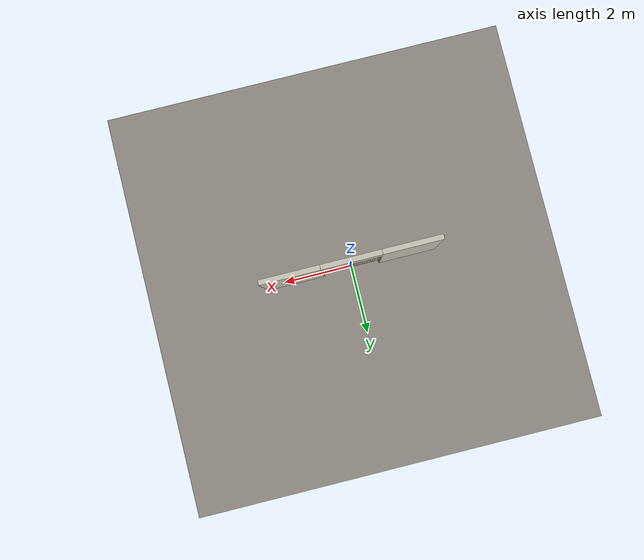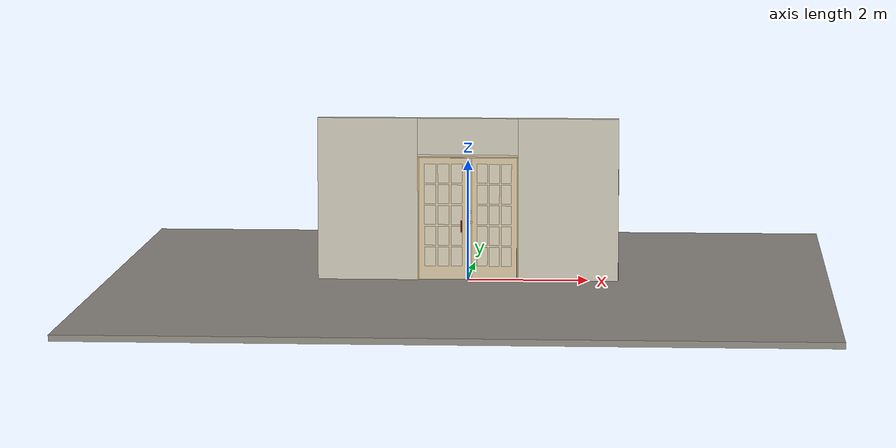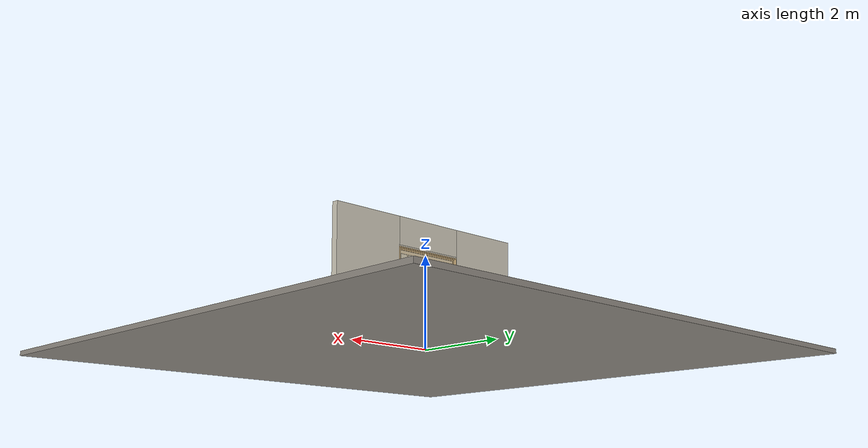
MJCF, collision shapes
<?xml version="1.0" ?>
<mujoco model="db0929_swing_double_minimal">
  <compiler angle="radian" meshdir="../../hardware" texturedir="../../textures" autolimits="true" inertiafromgeom="false"/>
  <option timestep="0.002" integrator="implicitfast" cone="elliptic" impratio="10" noslip_iterations="3">
    <flag multiccd="enable"/>
  </option>
  <size memory="16M"/>
  <default>
    <geom condim="4" solref="0.005 1" solimp="0.95 0.99 0.001"/>
    <joint solreflimit="0.005 1" solimplimit="0.95 0.99 0.001"/>
    <tendon solreflimit="0.005 1"/>
    <equality solref="0.002 1"/>
  </default>
  <visual>
    <headlight ambient="0.4 0.4 0.4" diffuse="0.7 0.7 0.7" specular="0.2 0.2 0.2"/>
    <quality shadowsize="4096"/>
    <map znear="0.01" zfar="60"/>
  </visual>
  <asset>
    <mesh name="handleset_beb5526ad2" file="handleset_beb5526ad2.obj"/>
    <mesh name="knob_d1888f6f03" file="knob_d1888f6f03.obj"/>
    <material name="mat_floor" rgba="0.55 0.53 0.5 1" specular="0.2" shininess="0.15" reflectance="0"/>
    <material name="mat_wall" rgba="0.78 0.76 0.7 1" specular="0.2" shininess="0.1" reflectance="0"/>
    <material name="mat_leaf_a" rgba="0.82 0.75 0.62 1" specular="0.2" shininess="0.51" reflectance="0"/>
    <material name="mat_glass" rgba="0.85 0.92 0.95 0.25" specular="0.2" shininess="0.95" reflectance="0.1"/>
    <material name="mat_hinge" rgba="0.65 0.66 0.68 1" specular="0.74" shininess="0.5" reflectance="0.36"/>
    <material name="mat_op_bronze" rgba="0.3 0.22 0.15 1" specular="0.74" shininess="0.5" reflectance="0.36"/>
    <material name="mat_op_brass" rgba="0.85 0.66 0.3 1" specular="0.8" shininess="0.75" reflectance="0.4"/>
    <material name="mat_trim" rgba="0.85 0.66 0.3 1" specular="0.8" shininess="0.75" reflectance="0.4"/>
    <material name="mat_bolt" rgba="0.85 0.66 0.3 1" specular="0.8" shininess="0.75" reflectance="0.4"/>
    <material name="mat_deadbolt" rgba="0.85 0.66 0.3 1" specular="0.8" shininess="0.75" reflectance="0.4"/>
    <material name="mat_stop" rgba="0.9 0.9 0.92 1" specular="0.8" shininess="0.9" reflectance="0.4"/>
    <material name="mat_leaf_b" rgba="0.82 0.75 0.62 1" specular="0.2" shininess="0.51" reflectance="0"/>
    <material name="mat_frame" rgba="0.82 0.7 0.5 1" specular="0.2" shininess="0.45" reflectance="0"/>
    <texture name="skybox" type="skybox" builtin="gradient" rgb1="0.6 0.7 0.85" rgb2="0.9 0.92 0.95" width="256" height="256"/>
  </asset>
  <worldbody>
    <light name="sun" pos="1.5 -2.5 4" dir="-0.3 0.5 -0.8" directional="true" diffuse="0.8 0.8 0.8" specular="0.3 0.3 0.3" castshadow="true"/>
    <light name="fill" pos="-1.5 2.5 3" dir="0.3 -0.5 -0.7" directional="true" diffuse="0.35 0.35 0.4" castshadow="false"/>
    <camera name="robot_view" pos="0 -2.511687 1.734312" xyaxes="1 0 0 0 0.26963 0.962964" fovy="52"/>
    <camera name="far_view" pos="0 2.572687 1.734312" xyaxes="-1 0 0 0 -0.26963 0.962964" fovy="52"/>
    <camera name="iso" pos="-1.932062 -2.104938 2.141063" xyaxes="0.741536 -0.670913 0 0.242917 0.268487 0.932151" fovy="46"/>
    <camera name="detail_handle" pos="0.0735 -0.882 1.185" xyaxes="0.97561 0.219512 0 -0.070934 0.315262 0.94635" fovy="38"/>
    <geom name="floor" type="box" size="6 6 0.05" pos="0 0 -0.05" material="mat_floor" group="0" contype="1" conaffinity="1" friction="0.8 0.005 0.0001" density="2400"/>
    <geom name="wall_left" type="box" size="0.83175 0.0725 1.35" pos="-1.66825 0.0305 1.35" material="mat_wall" group="0" contype="1" conaffinity="1" friction="0.6 0.005 0.0001" density="800"/>
    <geom name="wall_right" type="box" size="0.83175 0.0725 1.35" pos="1.66825 0.0305 1.35" material="mat_wall" group="0" contype="1" conaffinity="1" friction="0.6 0.005 0.0001" density="800"/>
    <geom name="wall_header" type="box" size="0.8365 0.0725 0.303" pos="0 0.0305 2.397" material="mat_wall" group="0" contype="1" conaffinity="1" friction="0.6 0.005 0.0001" density="800"/>
    <geom name="jamb_l" type="box" size="0.0095 0.0725 1.0225" pos="-0.827 0.0305 1.0225" material="mat_frame" group="0" contype="1" conaffinity="1" friction="0.6 0.005 0.0001" density="300"/>
    <geom name="jamb_r" type="box" size="0.0095 0.0725 1.0225" pos="0.827 0.0305 1.0225" material="mat_frame" group="0" contype="1" conaffinity="1" friction="0.6 0.005 0.0001" density="300"/>
    <geom name="jamb_head" type="box" size="0.8365 0.0725 0.0095" pos="0 0.0305 2.0545" material="mat_frame" group="0" contype="1" conaffinity="1" friction="0.6 0.005 0.0001" density="300"/>
    <geom name="head_stud" type="box" size="0.8365 0.0725 0.015" pos="0 0.0305 2.079" material="mat_wall" group="0" contype="1" conaffinity="1" friction="0.6 0.005 0.0001" density="500"/>
    <geom name="stop_l" type="box" size="0.015 0.006 1.0225" pos="-0.8025 0.0285 1.0225" material="mat_frame" group="0" contype="1" conaffinity="1" friction="0.6 0.005 0.0001" density="300"/>
    <geom name="stop_r" type="box" size="0.015 0.006 1.0225" pos="0.8025 0.0285 1.0225" material="mat_frame" group="0" contype="1" conaffinity="1" friction="0.6 0.005 0.0001" density="300"/>
    <geom name="stop_head" type="box" size="0.8175 0.006 0.015" pos="0 0.0285 2.03" material="mat_frame" group="0" contype="1" conaffinity="1" friction="0.6 0.005 0.0001" density="300"/>
    <site name="approach_point" pos="0 -1.5 0" quat="1 0 0 0" size="0.05" rgba="0.2 0.9 0.2 0.5" group="4"/>
    <site name="goal_point" pos="0 1.5 0" quat="1 0 0 0" size="0.05" rgba="0.2 0.9 0.2 0.5" group="4"/>
    <site name="door_plane_center" pos="0 0 1.0225" quat="1 0 0 0" size="0.02" rgba="0.2 0.9 0.2 0.5" group="4"/>
    <site name="approach_point_2" pos="0 -1.5 0" quat="1 0 0 0" size="0.05" rgba="0.2 0.9 0.2 0.5" group="4"/>
    <site name="goal_point_2" pos="0 1.5 0" quat="1 0 0 0" size="0.05" rgba="0.2 0.9 0.2 0.5" group="4"/>
    <site name="door_plane_center_2" pos="0 0 1.0225" quat="1 0 0 0" size="0.02" rgba="0.2 0.9 0.2 0.5" group="4"/>
    <site name="approach_point_3" pos="0 -1.5 0" quat="1 0 0 0" size="0.05" rgba="0.2 0.9 0.2 0.5" group="4"/>
    <site name="goal_point_3" pos="0 1.5 0" quat="1 0 0 0" size="0.05" rgba="0.2 0.9 0.2 0.5" group="4"/>
    <site name="door_plane_center_3" pos="0 0 1.0225" quat="1 0 0 0" size="0.02" rgba="0.2 0.9 0.2 0.5" group="4"/>
    <body name="leaf_a" pos="-0.8175 0 0">
      <inertial pos="0.435826 -0.00439 1.014744" mass="25.587835" quat="0.497863 0.507676 0.491525 -0.502793" diaginertia="1.48017696 8.081841993 9.542513865"/>
      <joint name="leaf_a_hinge" type="hinge" axis="0 0 -1" pos="0.003 -0.029 0" limited="true" range="0 1.658063" solreflimit="0.02 1" damping="0.210326" frictionloss="0.502153" armature="0.02"/>
      <geom name="leaf_a_slab" type="box" size="0.4065 0.022 1.016" pos="0.4095 0 1.025" material="mat_leaf_a" group="0" contype="1" conaffinity="1" friction="0.4 0.005 0.0001" density="1"/>
      <geom name="leaf_a_glass_0" type="box" size="0.0955 0.0228 0.158688" pos="0.1885 0 0.391208" material="mat_glass" group="1" contype="0" conaffinity="0" density="1"/>
      <geom name="leaf_a_glass_1" type="box" size="0.0955 0.0228 0.158688" pos="0.4095 0 0.391208" material="mat_glass" group="1" contype="0" conaffinity="0" density="1"/>
      <geom name="leaf_a_glass_2" type="box" size="0.0955 0.0228 0.158688" pos="0.6305 0 0.391208" material="mat_glass" group="1" contype="0" conaffinity="0" density="1"/>
      <geom name="leaf_a_glass_3" type="box" size="0.0955 0.0228 0.158688" pos="0.1885 0 0.738584" material="mat_glass" group="1" contype="0" conaffinity="0" density="1"/>
      <geom name="leaf_a_glass_4" type="box" size="0.0955 0.0228 0.158688" pos="0.4095 0 0.738584" material="mat_glass" group="1" contype="0" conaffinity="0" density="1"/>
      <geom name="leaf_a_glass_5" type="box" size="0.0955 0.0228 0.158688" pos="0.6305 0 0.738584" material="mat_glass" group="1" contype="0" conaffinity="0" density="1"/>
      <geom name="leaf_a_glass_6" type="box" size="0.0955 0.0228 0.158688" pos="0.1885 0 1.08596" material="mat_glass" group="1" contype="0" conaffinity="0" density="1"/>
      <geom name="leaf_a_glass_7" type="box" size="0.0955 0.0228 0.158688" pos="0.4095 0 1.08596" material="mat_glass" group="1" contype="0" conaffinity="0" density="1"/>
      <geom name="leaf_a_glass_8" type="box" size="0.0955 0.0228 0.158688" pos="0.6305 0 1.08596" material="mat_glass" group="1" contype="0" conaffinity="0" density="1"/>
      <geom name="leaf_a_glass_9" type="box" size="0.0955 0.0228 0.158688" pos="0.1885 0 1.433336" material="mat_glass" group="1" contype="0" conaffinity="0" density="1"/>
      <geom name="leaf_a_glass_10" type="box" size="0.0955 0.0228 0.158688" pos="0.4095 0 1.433336" material="mat_glass" group="1" contype="0" conaffinity="0" density="1"/>
      <geom name="leaf_a_glass_11" type="box" size="0.0955 0.0228 0.158688" pos="0.6305 0 1.433336" material="mat_glass" group="1" contype="0" conaffinity="0" density="1"/>
      <geom name="leaf_a_glass_12" type="box" size="0.0955 0.0228 0.158688" pos="0.1885 0 1.780712" material="mat_glass" group="1" contype="0" conaffinity="0" density="1"/>
      <geom name="leaf_a_glass_13" type="box" size="0.0955 0.0228 0.158688" pos="0.4095 0 1.780712" material="mat_glass" group="1" contype="0" conaffinity="0" density="1"/>
      <geom name="leaf_a_glass_14" type="box" size="0.0955 0.0228 0.158688" pos="0.6305 0 1.780712" material="mat_glass" group="1" contype="0" conaffinity="0" density="1"/>
      <geom name="leaf_a_handleset_n" type="mesh" mesh="handleset_beb5526ad2" pos="0.711 -0.022 0.905" quat="0.707107 0.707107 0 0" material="mat_op_bronze" group="1" contype="0" conaffinity="0" density="3000"/>
      <geom name="leaf_a_handleset_col_n" type="capsule" size="0.011 0.09" pos="0.711 -0.082 0.905" material="mat_op_bronze" group="3" contype="1" conaffinity="1" rgba="0.8 0.3 0.3 0.25" friction="0.7 0.01 0.0001" density="3000"/>
      <site name="leaf_a_handleset_grip_n" pos="0.711 -0.082 0.905" quat="1 0 0 0" size="0.012" rgba="0.2 0.9 0.2 0.5" group="4"/>
      <site name="leaf_a_edge_mid" pos="0.816 0 1.016" quat="1 0 0 0" size="0.02" rgba="0.2 0.9 0.2 0.5" group="4"/>
      <body name="leaf_a_handle" pos="0.746 0 0.965">
        <inertial pos="0 0.058082 0" mass="0.549341" quat="0.707107 0 0 -0.707107" diaginertia="0.000155778 0.000270874 0.000270874"/>
        <joint name="leaf_a_handle_hinge" type="hinge" axis="0 -1 0" limited="true" range="0 0.87" damping="0.142525" frictionloss="0.038" stiffness="0.5" springref="-0.5" armature="0.01"/>
        <geom name="leaf_a_handle_knob_p" type="mesh" mesh="knob_d1888f6f03" pos="0 0.022 0" quat="-0.707107 0.707107 0 0" material="mat_op_brass" group="1" contype="0" conaffinity="0" density="3000"/>
        <geom name="leaf_a_handle_knob_col_p" type="sphere" size="0.0243" pos="0 0.0685 0" material="mat_op_brass" group="0" contype="1" conaffinity="1" friction="0.9 0.01 0.0001" density="3000"/>
        <geom name="leaf_a_handle_knob_neck_p" type="cylinder" size="0.011 0.012" pos="0 0.034 0" quat="0.707107 -0.707107 0 0" material="mat_op_brass" group="3" contype="1" conaffinity="1" rgba="0.8 0.3 0.3 0.25" friction="0.6 0.005 0.0001" density="3000"/>
        <site name="leaf_a_handle_grip_p" pos="0 0.0685 0" quat="1 0 0 0" size="0.012" rgba="0.2 0.9 0.2 0.5" group="4"/>
      </body>
      <body name="leaf_a_latch_bolt" pos="0.816 0 0.965">
        <inertial pos="-0.00865 0 0" mass="0.041419" quat="0.92388 -0.382683 0 0" diaginertia="0.000000798 0.000005598 0.000005598"/>
        <joint name="leaf_a_latch_bolt_slide" type="slide" axis="-1 0 0" limited="true" range="0 0.0127" damping="2" frictionloss="0.3" stiffness="300" springref="-0.008333" armature="0.1"/>
        <geom name="leaf_a_latch_bolt_capsule" type="capsule" size="0.00635 0.015" pos="-0.00865 0 0" quat="0.707107 0 0.707107 0" material="mat_bolt" group="0" contype="1" conaffinity="1" friction="0.2 0.005 0.0001" density="8500"/>
      </body>
    </body>
    <body name="leaf_b" pos="0.8175 0 0">
      <inertial pos="-0.379712 0 1.025217" mass="24.550164" quat="0.5 0.499999 0.500001 -0.5" diaginertia="1.163916352 8.443320063 9.599312568"/>
      <joint name="leaf_b_hinge" type="hinge" axis="0 0 1" pos="-0.003 -0.029 0" limited="true" range="0 0.001" solreflimit="0.02 1" damping="0.210326" frictionloss="0.502153" armature="0.02"/>
      <geom name="leaf_b_edge_965_wall_n" type="box" size="0.03 0.007075 0.0167" pos="-0.786 0.014925 0.965" material="mat_leaf_b" group="0" contype="1" conaffinity="1" friction="0.6 0.005 0.0001" density="1"/>
      <geom name="leaf_b_edge_965_wall_p" type="box" size="0.03 0.008 0.0167" pos="-0.786 -0.01585 0.965" material="mat_leaf_b" group="0" contype="1" conaffinity="1" friction="0.6 0.005 0.0001" density="1"/>
      <geom name="leaf_b_edge_965_ramp" type="box" size="0.03 0.01649 0.0167" pos="-0.781861 -0.026388 0.965" quat="0.977148 0 0 0.212558" material="mat_leaf_b" group="0" contype="1" conaffinity="1" friction="0.12 0.005 0.0001" density="1"/>
      <geom name="leaf_b_edge_965_back" type="box" size="0.02165 0.00785 0.0167" pos="-0.77765 0 0.965" material="mat_leaf_b" group="0" contype="1" conaffinity="1" friction="0.6 0.005 0.0001" density="1"/>
      <geom name="leaf_b_edge_1140_wall_n" type="box" size="0.03 0.00625 0.0155" pos="-0.786 0.01575 1.14" material="mat_leaf_b" group="0" contype="1" conaffinity="1" friction="0.6 0.005 0.0001" density="1"/>
      <geom name="leaf_b_edge_1140_wall_p" type="box" size="0.03 0.00625 0.0155" pos="-0.786 -0.01575 1.14" material="mat_leaf_b" group="0" contype="1" conaffinity="1" friction="0.6 0.005 0.0001" density="1"/>
      <geom name="leaf_b_edge_1140_back" type="box" size="0.0153 0.0095 0.0155" pos="-0.7713 0 1.14" material="mat_leaf_b" group="0" contype="1" conaffinity="1" friction="0.6 0.005 0.0001" density="1"/>
      <geom name="leaf_b_edge_seg_0" type="box" size="0.03 0.022 0.46965" pos="-0.786 0 0.47865" material="mat_leaf_b" group="0" contype="1" conaffinity="1" friction="0.6 0.005 0.0001" density="1"/>
      <geom name="leaf_b_edge_seg_1" type="box" size="0.03 0.022 0.0714" pos="-0.786 0 1.0531" material="mat_leaf_b" group="0" contype="1" conaffinity="1" friction="0.6 0.005 0.0001" density="1"/>
      <geom name="leaf_b_edge_seg_2" type="box" size="0.03 0.022 0.44275" pos="-0.786 0 1.59825" material="mat_leaf_b" group="0" contype="1" conaffinity="1" friction="0.6 0.005 0.0001" density="1"/>
      <geom name="leaf_b_slab" type="box" size="0.3765 0.022 1.016" pos="-0.3795 0 1.025" material="mat_leaf_b" group="0" contype="1" conaffinity="1" friction="0.4 0.005 0.0001" density="1"/>
      <geom name="leaf_b_glass_0" type="box" size="0.0855 0.0228 0.158688" pos="-0.1785 0 0.391208" material="mat_glass" group="1" contype="0" conaffinity="0" density="1"/>
      <geom name="leaf_b_glass_1" type="box" size="0.0855 0.0228 0.158688" pos="-0.3795 0 0.391208" material="mat_glass" group="1" contype="0" conaffinity="0" density="1"/>
      <geom name="leaf_b_glass_2" type="box" size="0.0855 0.0228 0.158688" pos="-0.5805 0 0.391208" material="mat_glass" group="1" contype="0" conaffinity="0" density="1"/>
      <geom name="leaf_b_glass_3" type="box" size="0.0855 0.0228 0.158688" pos="-0.1785 0 0.738584" material="mat_glass" group="1" contype="0" conaffinity="0" density="1"/>
      <geom name="leaf_b_glass_4" type="box" size="0.0855 0.0228 0.158688" pos="-0.3795 0 0.738584" material="mat_glass" group="1" contype="0" conaffinity="0" density="1"/>
      <geom name="leaf_b_glass_5" type="box" size="0.0855 0.0228 0.158688" pos="-0.5805 0 0.738584" material="mat_glass" group="1" contype="0" conaffinity="0" density="1"/>
      <geom name="leaf_b_glass_6" type="box" size="0.0855 0.0228 0.158688" pos="-0.1785 0 1.08596" material="mat_glass" group="1" contype="0" conaffinity="0" density="1"/>
      <geom name="leaf_b_glass_7" type="box" size="0.0855 0.0228 0.158688" pos="-0.3795 0 1.08596" material="mat_glass" group="1" contype="0" conaffinity="0" density="1"/>
      <geom name="leaf_b_glass_8" type="box" size="0.0855 0.0228 0.158688" pos="-0.5805 0 1.08596" material="mat_glass" group="1" contype="0" conaffinity="0" density="1"/>
      <geom name="leaf_b_glass_9" type="box" size="0.0855 0.0228 0.158688" pos="-0.1785 0 1.433336" material="mat_glass" group="1" contype="0" conaffinity="0" density="1"/>
      <geom name="leaf_b_glass_10" type="box" size="0.0855 0.0228 0.158688" pos="-0.3795 0 1.433336" material="mat_glass" group="1" contype="0" conaffinity="0" density="1"/>
      <geom name="leaf_b_glass_11" type="box" size="0.0855 0.0228 0.158688" pos="-0.5805 0 1.433336" material="mat_glass" group="1" contype="0" conaffinity="0" density="1"/>
      <geom name="leaf_b_glass_12" type="box" size="0.0855 0.0228 0.158688" pos="-0.1785 0 1.780712" material="mat_glass" group="1" contype="0" conaffinity="0" density="1"/>
      <geom name="leaf_b_glass_13" type="box" size="0.0855 0.0228 0.158688" pos="-0.3795 0 1.780712" material="mat_glass" group="1" contype="0" conaffinity="0" density="1"/>
      <geom name="leaf_b_glass_14" type="box" size="0.0855 0.0228 0.158688" pos="-0.5805 0 1.780712" material="mat_glass" group="1" contype="0" conaffinity="0" density="1"/>
      <site name="leaf_b_edge_mid" pos="-0.816 0 1.016" quat="1 0 0 0" size="0.02" rgba="0.2 0.9 0.2 0.5" group="4"/>
    </body>
  </worldbody>
  <tendon>
    <fixed name="leaf_a_latch_bolt_coupling" limited="true" range="0 10">
      <joint joint="leaf_a_latch_bolt_slide" coef="1"/>
      <joint joint="leaf_a_handle_hinge" coef="-0.015679"/>
    </fixed>
  </tendon>
  <sensor>
    <jointpos name="leaf_a_hinge_pos" joint="leaf_a_hinge"/>
    <jointvel name="leaf_a_hinge_vel" joint="leaf_a_hinge"/>
    <jointpos name="leaf_a_handle_hinge_pos" joint="leaf_a_handle_hinge"/>
    <jointvel name="leaf_a_handle_hinge_vel" joint="leaf_a_handle_hinge"/>
    <jointpos name="leaf_a_latch_bolt_slide_pos" joint="leaf_a_latch_bolt_slide"/>
    <jointvel name="leaf_a_latch_bolt_slide_vel" joint="leaf_a_latch_bolt_slide"/>
    <jointpos name="leaf_b_hinge_pos" joint="leaf_b_hinge"/>
    <jointvel name="leaf_b_hinge_vel" joint="leaf_b_hinge"/>
  </sensor>
</mujoco>
